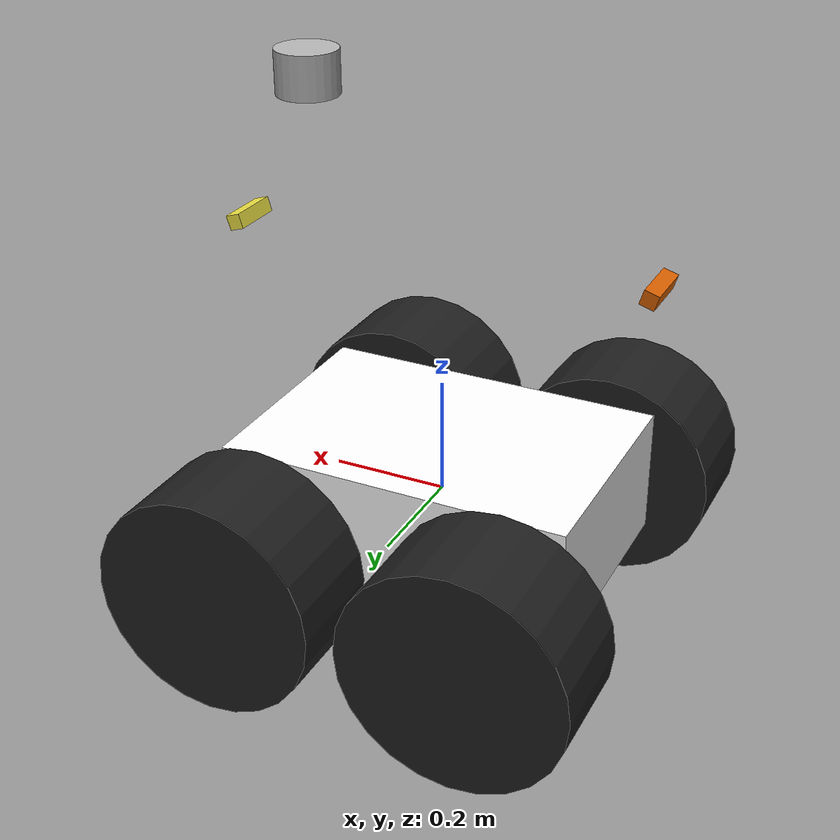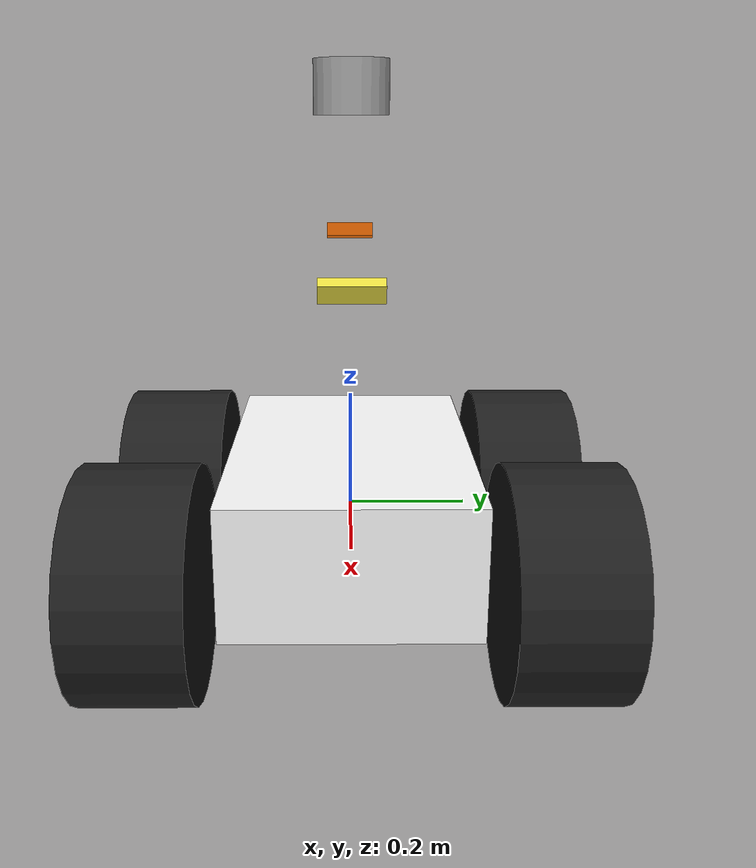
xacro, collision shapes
<?xml version="1.0"?>

<robot name="smb"
	xmlns:xacro="http://www.ros.org/wiki/xacro">

	<xacro:property name="robot_name" value="smb"/>
	<xacro:arg name="robot_namespace" default="/" />
	<xacro:property name="M_PI" value="3.14159"/>
	<xacro:property name="chassisHeight" value="0.22"/>
	<xacro:property name="chassisLength" value="0.605"/>
	<xacro:property name="chassisWidth" value="0.410"/>
	<xacro:property name="chassisMass" value="40"/>

	<!-- Included URDF/XACRO Files -->
	<xacro:include filename="$(find smb_description)/urdf/wheel.urdf.xacro" />
	<xacro:include filename="$(find smb_description)/urdf/smb_utils.urdf.xacro" />

	<!-- Base link is the robot chassis -->
	<link name="$(arg robot_namespace)_base_link">
		<visual>
			<origin xyz="0.423 0.42 -0.25" rpy="1.57 0 -1.57" />
			<geometry>
				<mesh filename="package://smb_description/meshes/SMB_COARSE.dae" scale="0.001 0.001 0.001" />
			</geometry>
			<material name="w">
				<color rgba="1.0 1.0 1.0 1.0"/>
			</material>
		</visual>
		<collision>
			<origin xyz="0 0 0" rpy="0 0 0" />
			<geometry>
				<box size="${chassisLength} ${chassisWidth} ${chassisHeight}"/>
			</geometry>
		</collision>
	</link>

	<gazebo reference="$(arg robot_namespace)_base_link">
		<material>Gazebo/Orange</material>
	</gazebo>

	<!-- Interial link stores the robot's inertial information -->
	<link name="$(arg robot_namespace)_inertial_link">
		<inertial>
			<mass value="${chassisMass}" />
			<origin xyz="0 0 0" />
			<xacro:box_inertia m="${chassisMass}" x="${chassisLength}" y="${chassisWidth}" z="${chassisHeight}"/>
		</inertial>
	</link>

	<joint name="$(arg robot_namespace)_inertial_joint" type="fixed">
		<origin xyz="0 0 0" rpy="0 0 0" />
		<parent link="$(arg robot_namespace)_base_link" />
		<child link="$(arg robot_namespace)_inertial_link" />
	</joint>

	<!-- SMB wheel macros -->
	<xacro:smb_wheel wheel_prefix="$(arg robot_namespace)_LF" BaseNs="$(arg robot_namespace)">
		<origin xyz="${frontWheelX} ${chassisWidth/2+wheelClearance+wheelWidth/2} ${-wheelHeight}" rpy="0 0 0" />
	</xacro:smb_wheel>
	<xacro:smb_wheel wheel_prefix="$(arg robot_namespace)_RF" BaseNs="$(arg robot_namespace)">
		<origin xyz="${frontWheelX} ${-chassisWidth/2-wheelClearance-wheelWidth/2} ${-wheelHeight}" rpy="0 0 0" />
	</xacro:smb_wheel>
	<xacro:smb_wheel wheel_prefix="$(arg robot_namespace)_LH" BaseNs="$(arg robot_namespace)">
		<origin xyz="${backWheelX} ${chassisWidth/2+wheelClearance+wheelWidth/2} ${-wheelHeight}" rpy="0 0 0" />
	</xacro:smb_wheel>
	<xacro:smb_wheel wheel_prefix="$(arg robot_namespace)_RH" BaseNs="$(arg robot_namespace)">
		<origin xyz="${backWheelX} ${-chassisWidth/2-wheelClearance-wheelWidth/2} ${-wheelHeight}" rpy="0 0 0" />
	</xacro:smb_wheel>

	<!-- ROS control plugin to move the robot in simulation -->
	<gazebo>
		<plugin name="gazebo_ros_control" filename="libgazebo_ros_control.so">
			<robotNamespace>$(arg robot_namespace)</robotNamespace>
		</plugin>

		<plugin name="p3d_base_controller" filename="libgazebo_ros_p3d.so">
			<alwaysOn>true</alwaysOn>
			<updateRate>50.0</updateRate>
			<bodyName>$(arg robot_namespace)_base_link</bodyName>
			<topicName>ground_truth/state</topicName>
			<gaussianNoise>0.001</gaussianNoise>
			<frameName>world</frameName>
			<xyzOffsets>0 0 0</xyzOffsets>
			<rpyOffsets>0 0 0</rpyOffsets>
		</plugin>
	</gazebo>

	<xacro:include filename="$(find smb_description)/urdf/SensorHeadForVRP.urdf.xacro"/>
	<xacro:sensor_head parent="$(arg robot_namespace)_base_link" name="$(arg robot_namespace)_Sensor_Head" RobotNs="$(arg robot_namespace)">
		<origin xyz="0.2 0 0.576" rpy="0 0 0" />
	</xacro:sensor_head>
</robot>

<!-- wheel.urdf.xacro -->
<robot xmlns:xacro="http://www.ros.org/wiki/xacro" name="smb_wheel">
    <xacro:property name="PI" value="3.1415926535897931"/>
    <xacro:property name="robot_name" value="smb"/>

    <xacro:property name="wheelWidth" value="0.185"/>
    <xacro:property name="wheelRadius" value="0.19"/>
    <xacro:property name="frontWheelX" value="0.2159"/>
    <xacro:property name="backWheelX" value="-0.21"/>
    <xacro:property name="wheelClearance" value="0.03"/>
    <xacro:property name="wheelHeight" value="0.05"/>
    <xacro:property name="wheelMass" value="5"/>

	<xacro:macro name="smb_wheel" params="wheel_prefix *joint_pose BaseNs">
		<link name="${wheel_prefix}_WHEEL_LINK">
			<inertial>
				<mass value="${wheelMass}" />
				<origin xyz="0 0 0" />
				<xacro:cylinder_inertia m="${wheelMass}" r="${wheelRadius}" h="${wheelWidth}"/>
			</inertial>
			<visual>
				<origin xyz="0 0 0" rpy="${M_PI/2} 0 0" />
				<geometry>
					<cylinder length="0.17" radius="0.20"/>  <!-- wheel visual dimensions are small to make the mesh fit properly -->
				</geometry>
				<material name="black"/>
			</visual>
			<collision>
				<origin xyz="0 0 0" rpy="${M_PI/2} 0 0" />
				<geometry>
					<cylinder length="${wheelWidth}" radius="${wheelRadius}" />
				</geometry>
			</collision>
		</link>

		<gazebo reference="${wheel_prefix}_WHEEL_LINK">
			<mu1 value="1.0"/>
			<mu2 value="1.0"/>
			<kp value="10000000.0" />
			<kd value="1.0" />
			<fdir1 value="1 0 0"/>
			<minDepth>0.005</minDepth>
            <maxVel>100.0</maxVel>
            <material>Gazebo/Black</material>
		</gazebo>

		<joint name="${wheel_prefix}_WHEEL" type="continuous">
			<parent link="${BaseNs}_base_link"/>
			<child link="${wheel_prefix}_WHEEL_LINK"/>
			<xacro:insert_block name="joint_pose"/>
			<axis xyz="0 1 0" rpy="0 0 0" />
		</joint>

		<transmission name="${wheel_prefix}_WHEEL_TRANS" type="SimpleTransmission">
			<type>transmission_interface/SimpleTransmission</type>
			<actuator name="${wheel_prefix}_WHEEL_MOTOR">
				<mechanicalReduction>1</mechanicalReduction>
			</actuator>
			<joint name="${wheel_prefix}_WHEEL">
				<hardwareInterface>hardware_interface/VelocityJointInterface</hardwareInterface>
			</joint>
		</transmission>

	</xacro:macro>
</robot>

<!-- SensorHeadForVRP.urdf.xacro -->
<robot xmlns:xacro="http://www.ros.org/wiki/xacro" name="sensor_head">

	<xacro:macro name="sensor_head" params="*origin parent:=base_link name:=sensor_head RobotNs:=robot">
		<joint name="${name}_base_mount_joint" type="fixed">
			<xacro:insert_block name="origin" />
			<parent link="${parent}"/>
			<child link="${name}_base_link"/>
		</joint>

		<link name="${name}_base_link">
			<inertial>
				<mass value="0.001" />
				<origin xyz="0 0 0" rpy="0 0 0"/>
				<inertia ixx="0" ixy="0" ixz="0" iyy="0" iyz="0" izz="0" />
			</inertial>
		</link>

		<xacro:arg name="gpu" default="true"/>

		<xacro:include filename="$(find lidar_description)/urdf/VLP-16-2.urdf.xacro"/>
		<xacro:VLP-16 parent="${name}_base_link" name="${name}_Top_Velodyne" topic="${name}_Top_Velodyne_Points" hz="10" lasers="32" samples="440" gpu="$(arg gpu)" collision_range="0.2" min_range="0.2" RobotNs="${RobotNs}">
			<origin xyz="0.03 0 0.08" rpy="0 0 0" />
		</xacro:VLP-16>

		<xacro:include filename="$(find realsense_simulator)/xacro/depthcam.xacro"/>
		<xacro:realsense_d435 sensor_name="${name}_Front_RealsenseD435" parent_link="${name}_base_link" rate="10">
    		<origin rpy="0 0.3 0 " xyz="0.15 0 -0.15"/>
  		</xacro:realsense_d435>

		<xacro:realsense_d435 sensor_name="${name}_Back_RealsenseD435" parent_link="${name}_base_link" rate="10">
    		<origin rpy="0 0.3 3.14159265 " xyz="-0.55 0 -0.15"/>
  		</xacro:realsense_d435>

	</xacro:macro>
</robot>

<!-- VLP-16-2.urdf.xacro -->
<robot xmlns:xacro="http://www.ros.org/wiki/xacro" name="VLP-16">
  <xacro:property name="M_PI" value="3.1415926535897931" />
  <xacro:macro name="VLP-16" params="*origin parent:=base_link name:=velodyne topic:=/velodyne_points hz:=10 lasers:=16 samples:=1875 collision_range:=0.8 min_range:=0.9 max_range:=130.0 noise:=0.008 min_angle:=-${M_PI} max_angle:=${M_PI} gpu:=false RobotNs:=robot">

    <joint name="${name}_base_mount_joint" type="fixed">
      <xacro:insert_block name="origin" />
      <parent link="${parent}"/>
      <child link="${name}_base_link"/>
    </joint>

    <link name="${name}_base_link">
      <inertial>
        <mass value="0.83"/>
        <origin xyz="0 0 0.03585"/>
        <inertia ixx="${(0.83 * (3.0*0.0516*0.0516 + 0.0717*0.0717)) / 12.0}" ixy="0" ixz="0"
          iyy="${(0.83 * (3.0*0.0516*0.0516 + 0.0717*0.0717)) / 12.0}" iyz="0"
          izz="${0.5 * 0.83 * (0.0516*0.0516)}"/>
      </inertial>
      <visual>
        <geometry>
          <mesh filename="package://lidar_description/meshes/VLP-16/VLP-16_base_1.dae" />
        </geometry>
      </visual>
      <visual>
        <geometry>
          <mesh filename="package://lidar_description/meshes/VLP-16/VLP-16_base_2.dae" />
        </geometry>
      </visual>
      <collision>
        <origin rpy="0 0 0" xyz="0 0 0.03585"/>
        <geometry>
          <cylinder radius="0.0516" length="0.0717"/>
        </geometry>
      </collision>
    </link>

    <joint name="${name}_base_scan_joint" type="fixed" >
      <origin xyz="0 0 0.0377" rpy="0 0 0" />
      <parent link="${name}_base_link" />
      <child link="${name}"/>
    </joint>

    <link name="${name}">
      <inertial>
        <mass value="0.01"/>
        <origin xyz="0 0 0"/>
        <inertia ixx="1e-7" ixy="0" ixz="0" iyy="1e-7" iyz="0" izz="1e-7"/>
      </inertial>
      <visual>
        <origin xyz="0 0 -0.0377" />
        <geometry>
          <mesh filename="package://lidar_description/meshes/VLP-16/VLP-16_scan.dae" />
        </geometry>
      </visual>
    </link>

    <!-- AddRobotNsAsFrameNs. Written by December. -->
    <joint name="${name}_base_scan_joint_for_supplementation" type="fixed">
		  <origin xyz="0 0 0" rpy="0 0 0"/>
		  <parent link="${name}" />
		  <child link="${RobotNs}/${name}"/>
	  </joint>
    <link name="${RobotNs}/${name}">
			<inertial>
				<mass value="0.001" />
				<origin xyz="0 0 0" rpy="0 0 0"/>
				<inertia ixx="0" ixy="0" ixz="0" iyy="0" iyz="0" izz="0" />
			</inertial>
		</link>

    <!-- Gazebo requires the velodyne_gazebo_plugins package -->
    <gazebo reference="${name}">
      <xacro:if value="${gpu}">
        <sensor type="gpu_ray" name="${name}-VLP16">
          <pose>0 0 0 0 0 0</pose>
          <visualize>false</visualize>
          <update_rate>${hz}</update_rate>
          <ray>
            <scan>
              <horizontal>
                <samples>${samples}</samples>
                <resolution>1</resolution>
                <min_angle>${min_angle}</min_angle>
                <max_angle>${max_angle}</max_angle>
              </horizontal>
              <vertical>
                <samples>${lasers}</samples>
                <resolution>1</resolution>
                <min_angle>-${16.611*M_PI/180.0}</min_angle>
                <max_angle> ${16.611*M_PI/180.0}</max_angle>
              </vertical>
            </scan>
            <range>
              <min>${collision_range}</min>
              <max>${max_range+1}</max>
              <resolution>0.001</resolution>
            </range>
            <noise>
              <type>gaussian</type>
              <mean>0.0</mean>
              <stddev>0.0</stddev>
            </noise>
          </ray>
          <plugin name="gazebo_ros_laser_controller" filename="libgazebo_ros_lidar_gpu.so">
            <topicName>${topic}</topicName>
            <frameName>${name}</frameName>
            <min_range>${min_range}</min_range>
            <max_range>${max_range}</max_range>
            <gaussianNoise>${noise}</gaussianNoise>
          </plugin>
        </sensor>
      </xacro:if>
      <xacro:unless value="${gpu}">
        <sensor type="ray" name="${name}-VLP16">
          <pose>0 0 0 0 0 0</pose>
          <visualize>false</visualize>
          <update_rate>${hz}</update_rate>
          <ray>
            <scan>
              <horizontal>
                <samples>${samples}</samples>
                <resolution>1</resolution>
                <min_angle>${min_angle}</min_angle>
                <max_angle>${max_angle}</max_angle>
              </horizontal>
              <vertical>
                <samples>${lasers}</samples>
                <resolution>1</resolution>
                <min_angle>-${16.611*M_PI/180.0}</min_angle>
                <max_angle> ${16.611*M_PI/180.0}</max_angle>
              </vertical>
            </scan>
            <range>
              <min>${collision_range}</min>
              <max>${max_range+1}</max>
              <resolution>0.001</resolution>
            </range>
            <noise>
              <type>gaussian</type>
              <mean>0.0</mean>
              <stddev>0.0</stddev>
            </noise>
          </ray>
          <plugin name="gazebo_ros_laser_controller" filename="libgazebo_ros_lidar.so">
            <topicName>${topic}</topicName>
            <frameName>${name}</frameName>
            <min_range>${min_range}</min_range>
            <max_range>${max_range}</max_range>
            <gaussianNoise>${noise}</gaussianNoise>
          </plugin>
        </sensor>
      </xacro:unless>
    </gazebo>

  </xacro:macro>
</robot>

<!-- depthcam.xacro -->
<robot xmlns:xacro="http://www.ros.org/wiki/xacro">

  <xacro:include filename="$(find realsense_simulator)/xacro/inertia_calc.xacro"/>

  <!-- INTEL REALSENSE D435 -->

  <xacro:macro name="realsense_d435" params="sensor_name parent_link *origin rate">

    <xacro:property name="d435_cam_depth_to_left_ir_offset" value="0.0"/>
    <xacro:property name="d435_cam_depth_to_right_ir_offset" value="-0.050"/>
    <xacro:property name="d435_cam_depth_to_color_offset" value="0.015"/>
    <xacro:property name="d435_cam_width" value="0.090"/>
    <xacro:property name="d435_cam_height" value="0.025"/>
    <xacro:property name="d435_cam_depth" value="0.02505"/>
    <xacro:property name="d435_cam_mass" value="0.000000564"/>
    <xacro:property name="d435_cam_mount_from_center_offset" value="0.0149"/>
    <xacro:property name="d435_cam_depth_px" value="${d435_cam_mount_from_center_offset}"/>
    <xacro:property name="d435_cam_depth_py" value="0.0175"/>
    <xacro:property name="d435_cam_depth_pz" value="${d435_cam_height/2}"/>

    <!-- camera body, with origin at bottom screw mount -->
    <joint name="${sensor_name}_joint" type="fixed">
      <xacro:insert_block name="origin" />
      <parent link="${parent_link}"/>
      <child link="${sensor_name}_bottom_screw_frame" />
    </joint>
    <link name="${sensor_name}_bottom_screw_frame"/>

    <joint name="${sensor_name}_link_joint" type="fixed">
      <origin xyz="0 ${d435_cam_depth_py} ${d435_cam_depth_pz}" rpy="0 0 0"/>
      <parent link="${sensor_name}_bottom_screw_frame"/>
      <child link="${sensor_name}_link" />
    </joint>

    <link name="${sensor_name}_link">
      <visual>
        <origin xyz="${d435_cam_mount_from_center_offset} ${-d435_cam_depth_py} 0" rpy="${pi/2} 0 ${pi/2}"/>
        <geometry>
          <mesh filename="package://realsense_simulator/meshes/realsense_d435.stl" />
        </geometry>
      </visual>
      <collision>
        <origin xyz="0 ${-d435_cam_depth_py} 0" rpy="0 0 0"/>
        <geometry>
          <box size="${d435_cam_depth} ${d435_cam_width} ${d435_cam_height}"/>
        </geometry>
      </collision>
      <inertial>
        <mass value="${d435_cam_mass}" />
        <origin xyz="0 ${-d435_cam_depth_py} 0" rpy="0 0 0"/>
        <xacro:box_inertia m="${d435_cam_mass}" x="${d435_cam_depth}" y="${d435_cam_width}" z="${d435_cam_height}"/>
      </inertial>
    </link>

    <!-- camera depth joints and links -->
    <joint name="${sensor_name}_depth_joint" type="fixed">
      <origin xyz="0 0 0" rpy="0 0 0"/>
      <parent link="${sensor_name}_link"/>
      <child link="${sensor_name}_depth_frame" />
    </joint>
    <link name="${sensor_name}_depth_frame"/>

    <joint name="${sensor_name}_depth_optical_joint" type="fixed">
      <origin xyz="0 0 0" rpy="${-pi/2} 0 ${-pi/2}" />
      <parent link="${sensor_name}_depth_frame" />
      <child link="${sensor_name}_depth_optical_frame" />
    </joint>
    <link name="${sensor_name}_depth_optical_frame"/>

    <!-- camera left IR joints and links -->
    <joint name="${sensor_name}_left_ir_joint" type="fixed">
      <origin xyz="0 ${d435_cam_depth_to_left_ir_offset} 0" rpy="0 0 0" />
      <parent link="${sensor_name}_depth_frame" />
      <child link="${sensor_name}_left_ir_frame" />
    </joint>
    <link name="${sensor_name}_left_ir_frame"/>

    <joint name="${sensor_name}_left_ir_optical_joint" type="fixed">
      <origin xyz="0 0 0" rpy="${-pi/2} 0 ${-pi/2}" />
      <parent link="${sensor_name}_left_ir_frame" />
      <child link="${sensor_name}_left_ir_optical_frame" />
    </joint>
    <link name="${sensor_name}_left_ir_optical_frame"/>

    <!-- camera right IR joints and links -->
    <joint name="${sensor_name}_right_ir_joint" type="fixed">
      <origin xyz="0 ${d435_cam_depth_to_right_ir_offset} 0" rpy="0 0 0" />
      <parent link="${sensor_name}_depth_frame" />
      <child link="${sensor_name}_right_ir_frame" />
    </joint>
    <link name="${sensor_name}_right_ir_frame"/>

    <joint name="${sensor_name}_right_ir_optical_joint" type="fixed">
      <origin xyz="0 0 0" rpy="${-pi/2} 0 ${-pi/2}" />
      <parent link="${sensor_name}_right_ir_frame" />
      <child link="${sensor_name}_right_ir_optical_frame" />
    </joint>
    <link name="${sensor_name}_right_ir_optical_frame"/>

    <!-- camera color joints and links -->
    <joint name="${sensor_name}_color_joint" type="fixed">
      <origin xyz="0 ${d435_cam_depth_to_color_offset} 0" rpy="0 0 0" />
      <parent link="${sensor_name}_depth_frame" />
      <child link="${sensor_name}_color_frame" />
    </joint>
    <link name="${sensor_name}_color_frame"/>

    <joint name="${sensor_name}_color_optical_joint" type="fixed">
      <origin xyz="0 0 0" rpy="${-pi/2} 0 ${-pi/2}" />
      <parent link="${sensor_name}_color_frame" />
      <child link="${sensor_name}_color_optical_frame" />
    </joint>
    <link name="${sensor_name}_color_optical_frame"/>

    <!-- gazebo plugin -->

    <xacro:property name="DegToRadForRealsenseGazebo" value="0.01745329251994329577" />

    <gazebo reference="${sensor_name}_link">
      <self_collide>0</self_collide>
      <enable_wind>0</enable_wind>
      <kinematic>0</kinematic>
      <gravity>1</gravity>
      <mu2>1</mu2>
      <fdir1>0 0 0</fdir1>
      <kp>1e+13</kp>
      <kd>1</kd>

      <sensor name="${sensor_name}_color" type="camera">
        <camera name="${sensor_name}">
          <horizontal_fov>${69.4*DegToRadForRealsenseGazebo}</horizontal_fov>
          <image>
            <width>640</width>
            <height>480</height>
            <format>RGB_INT8</format>
          </image>
          <clip>
            <near>0.1</near>
            <far>100</far>
          </clip>
          <noise>
            <type>gaussian</type>
            <mean>0.0</mean>
            <stddev>0.007</stddev>
          </noise>
        </camera>
        <always_on>1</always_on>
        <update_rate>30</update_rate>
        <visualize>1</visualize>
      </sensor>
      <sensor name="${sensor_name}_ired1" type="camera">
        <camera name="${sensor_name}">
          <horizontal_fov>${85.2*DegToRadForRealsenseGazebo}</horizontal_fov>
          <image>
            <width>1280</width>
            <height>720</height>
            <format>L_INT8</format>
          </image>
          <clip>
            <near>0.1</near>
            <far>100</far>
          </clip>
          <noise>
            <type>gaussian</type>
            <mean>0.0</mean>
            <stddev>0.05</stddev>
          </noise>
        </camera>
        <always_on>1</always_on>
        <update_rate>90</update_rate>
        <visualize>0</visualize>
      </sensor>
      <sensor name="${sensor_name}_ired2" type="camera">
        <camera name="${sensor_name}">
          <horizontal_fov>${85.2*DegToRadForRealsenseGazebo}</horizontal_fov>
          <image>
            <width>1280</width>
            <height>720</height>
            <format>L_INT8</format>
          </image>
          <clip>
            <near>0.1</near>
            <far>100</far>
          </clip>
          <noise>
            <type>gaussian</type>
            <mean>0.0</mean>
            <stddev>0.05</stddev>
          </noise>
        </camera>
        <always_on>1</always_on>
        <update_rate>90</update_rate>
        <visualize>0</visualize>
      </sensor>
      <sensor name="${sensor_name}_depth" type="depth">
        <camera name="${sensor_name}">
          <horizontal_fov>${85.2*DegToRadForRealsenseGazebo}</horizontal_fov>
          <image>
            <width>1280</width>
            <height>720</height>
          </image>
          <clip>
            <near>0.1</near>
            <far>100</far>
          </clip>
          <noise>
            <type>gaussian</type>
            <mean>0.0</mean>
            <stddev>0.100</stddev>
          </noise>
        </camera>
        <always_on>1</always_on>
        <update_rate>90</update_rate>
        <visualize>0</visualize>
      </sensor>
    </gazebo>

    <gazebo>
      <plugin name="${sensor_name}" filename="librealsense_gazebo_plugin.so">
        <prefix>${sensor_name}_</prefix>
        <depthUpdateRate>${rate}</depthUpdateRate>
        <colorUpdateRate>${rate}</colorUpdateRate>
        <infraredUpdateRate>${rate}</infraredUpdateRate>
        <depthTopicName>depth/image_raw</depthTopicName>
        <depthCameraInfoTopicName>depth/camera_info</depthCameraInfoTopicName>
        <colorTopicName>color/image_raw</colorTopicName>
        <colorCameraInfoTopicName>color/camera_info</colorCameraInfoTopicName>
        <infrared1TopicName>infra1/image_raw</infrared1TopicName>
        <infrared1CameraInfoTopicName>infra1/camera_info</infrared1CameraInfoTopicName>
        <infrared2TopicName>infra2/image_raw</infrared2TopicName>
        <infrared2CameraInfoTopicName>infra2/camera_info</infrared2CameraInfoTopicName>
        <colorOpticalframeName>${sensor_name}_color_optical_frame</colorOpticalframeName>
        <depthOpticalframeName>${sensor_name}_depth_optical_frame</depthOpticalframeName>
        <infrared1OpticalframeName>${sensor_name}_infrared1_optical_frame</infrared1OpticalframeName>
        <infrared2OpticalframeName>${sensor_name}_infrared2_optical_frame</infrared2OpticalframeName>
        <rangeMinDepth>0.2</rangeMinDepth>
        <rangeMaxDepth>10.0</rangeMaxDepth>
        <pointCloud>true</pointCloud>
        <pointCloudTopicName>depth/color/points</pointCloudTopicName>
        <pointCloudCutoff>0.25</pointCloudCutoff>
        <pointCloudCutoffMax>9.0</pointCloudCutoffMax>
      </plugin>
    </gazebo>

  </xacro:macro>

  <!-- INTEL REALSENSE R200 -->

  <xacro:macro name="realsense_R200" params="sensor_name parent_link rate *origin">

      <link name="${sensor_name}_R200_camera">
          <visual>
              <origin rpy="0 0 0" xyz="0 0 0"/>
              <geometry>
                  <mesh filename="package://realsense_simulator/meshes/realsense_r200/meshes/realsense.dae"/>
              </geometry>
          </visual>
          <collision>
              <geometry>
                  <box size="0.0078 0.130 0.0192"/>
              </geometry>
          </collision>
          <inertial>
              <mass value="0.0615752"/>
              <origin rpy="0 0 0" xyz="0 0 0"/>
              <inertia ixx="9.108e-05"
                       ixy="0"
                       ixz="0"
                       iyy="2.51e-06"
                       iyz="0"
                       izz="8.931e-05"/>
          </inertial>
      </link>

      <joint name="${sensor_name}_joint" type="fixed">
          <parent link="${parent_link}"/>
          <child link="${sensor_name}_R200_camera"/>
          <xacro:insert_block name="origin"/>
      </joint>

      <link name="${sensor_name}_color" />
      <link name="${sensor_name}_depth" />
      <link name="${sensor_name}_ired1" />
      <link name="${sensor_name}_ired2" />

      <joint name="${sensor_name}_color_joint" type="fixed">
          <parent link="${sensor_name}_R200_camera" />
          <child link="${sensor_name}_color" />
          <origin xyz="0 -0.046 0.004" rpy="${pi/2} ${pi} ${pi/2}"/>
      </joint>

      <joint name="${sensor_name}_depth_joint" type="fixed">
          <parent link="${sensor_name}_R200_camera" />
          <child link="${sensor_name}_depth" />
          <origin xyz="0 -0.03 0.004" rpy="0 0 0"/>
      </joint>

      <joint name="${sensor_name}_ired1_joint" type="fixed">
          <parent link="${sensor_name}_R200_camera" />
          <child link="${sensor_name}_ired1" />
          <origin xyz="0 -0.06 0.004" rpy="0 0 0"/>
      </joint>

      <joint name="${sensor_name}_ired2_joint" type="fixed">
          <parent link="${sensor_name}_R200_camera" />
          <child link="${sensor_name}_ired2" />
          <origin xyz="0 0.01 0.004" rpy="0 0 0"/>
      </joint>

      <gazebo reference="${sensor_name}_R200_camera">

          <self_collide>0</self_collide>
          <enable_wind>0</enable_wind>
          <kinematic>0</kinematic>
          <gravity>1</gravity>
          <mu>1</mu>
          <mu2>1</mu2>
          <fdir1>0 0 0</fdir1>
          <slip1>0</slip1>
          <slip2>0</slip2>
          <kp>1e+13</kp>
          <kd>1</kd>
          <max_vel>0.01</max_vel>
          <min_depth>0</min_depth>

          <sensor name="${sensor_name}_color" type="camera">
              <pose frame="">0 -0.046 0.004 0 0 0</pose>
              <camera name="${sensor_name}_R200_camera">
              <horizontal_fov>1.047</horizontal_fov>
              <image>
                  <width>640</width>
                  <height>480</height>
                  <format>RGB_INT8</format>
              </image>
              <clip>
                  <near>0.1</near>
                  <far>100</far>
              </clip>
              <noise>
                  <type>gaussian</type>
                  <mean>0.0</mean>
                  <stddev>0.007</stddev>
              </noise>
              </camera>
              <always_on>1</always_on>
              <update_rate>${rate}</update_rate>
              <visualize>1</visualize>
          </sensor>
          <sensor name="${sensor_name}_ired1" type="camera">
              <pose frame="">0 -0.06 0.004 0 0 0</pose>
              <camera name="${sensor_name}_R200_camera">
              <horizontal_fov>1.047</horizontal_fov>
              <image>
                  <width>640</width>
                  <height>480</height>
                  <format>L_INT8</format>
              </image>
              <clip>
                  <near>0.1</near>
                  <far>100</far>
              </clip>
              <noise>
                  <type>gaussian</type>
                  <mean>0.0</mean>
                  <stddev>0.05</stddev>
              </noise>
              </camera>
              <always_on>1</always_on>
              <update_rate>${rate}</update_rate>
              <visualize>0</visualize>
          </sensor>
          <sensor name="${sensor_name}_ired2" type="camera">
              <pose frame="">0 0.01 0.004 0 0 0</pose>
              <camera name="${sensor_name}_R200_camera">
              <horizontal_fov>1.047</horizontal_fov>
              <image>
                  <width>640</width>
                  <height>480</height>
                  <format>L_INT8</format>
              </image>
              <clip>
                  <near>0.1</near>
                  <far>100</far>
              </clip>
              <noise>
                  <type>gaussian</type>
                  <mean>0.0</mean>
                  <stddev>0.05</stddev>
              </noise>
              </camera>
              <always_on>1</always_on>
              <update_rate>${rate}</update_rate>
              <visualize>0</visualize>
          </sensor>
          <sensor name="${sensor_name}_depth" type="depth">
              <pose frame="">0 -0.03 0.004 0 0 0</pose>
              <camera name="${sensor_name}_R200_camera">
              <horizontal_fov>1.047</horizontal_fov>
              <image>
                      <width>640</width>
                      <height>480</height>
              </image>
              <clip>
                      <near>0.1</near>
                      <far>100</far>
              </clip>
              <noise>
                      <type>gaussian</type>
                      <mean>0.0</mean>
                      <stddev>0.100</stddev>
              </noise>
              </camera>
              <always_on>1</always_on>
              <update_rate>60</update_rate>
              <visualize>0</visualize>
          </sensor>
      </gazebo>

      <gazebo>
        <plugin name="${sensor_name}" filename="librealsense_gazebo_plugin.so">
          <prefix>${sensor_name}_</prefix>
          <depthUpdateRate>${rate}</depthUpdateRate>
          <colorUpdateRate>${rate}</colorUpdateRate>
          <infraredUpdateRate>${rate}</infraredUpdateRate>
          <depthTopicName>depth/image_raw</depthTopicName>
          <depthCameraInfoTopicName>depth/camera_info</depthCameraInfoTopicName>
          <colorTopicName>color/image_raw</colorTopicName>
          <colorCameraInfoTopicName>color/camera_info</colorCameraInfoTopicName>
          <infrared1TopicName>infra1/image_raw</infrared1TopicName>
          <infrared1CameraInfoTopicName>infra1/camera_info</infrared1CameraInfoTopicName>
          <infrared2TopicName>infra2/image_raw</infrared2TopicName>
          <infrared2CameraInfoTopicName>infra2/camera_info</infrared2CameraInfoTopicName>
          <colorOpticalframeName>${sensor_name}_color_optical_frame</colorOpticalframeName>
          <depthOpticalframeName>${sensor_name}_depth_optical_frame</depthOpticalframeName>
          <infrared1OpticalframeName>${sensor_name}_infrared1_optical_frame</infrared1OpticalframeName>
          <infrared2OpticalframeName>${sensor_name}_infrared2_optical_frame</infrared2OpticalframeName>
          <rangeMinDepth>0.2</rangeMinDepth>
          <rangeMaxDepth>10.0</rangeMaxDepth>
          <pointCloud>false</pointCloud>
          <pointCloudTopicName>depth/color/points</pointCloudTopicName>
          <pointCloudCutoff>0.25</pointCloudCutoff>
          <pointCloudCutoffMax>9.0</pointCloudCutoffMax>
        </plugin>
      </gazebo>

  </xacro:macro>

</robot>
